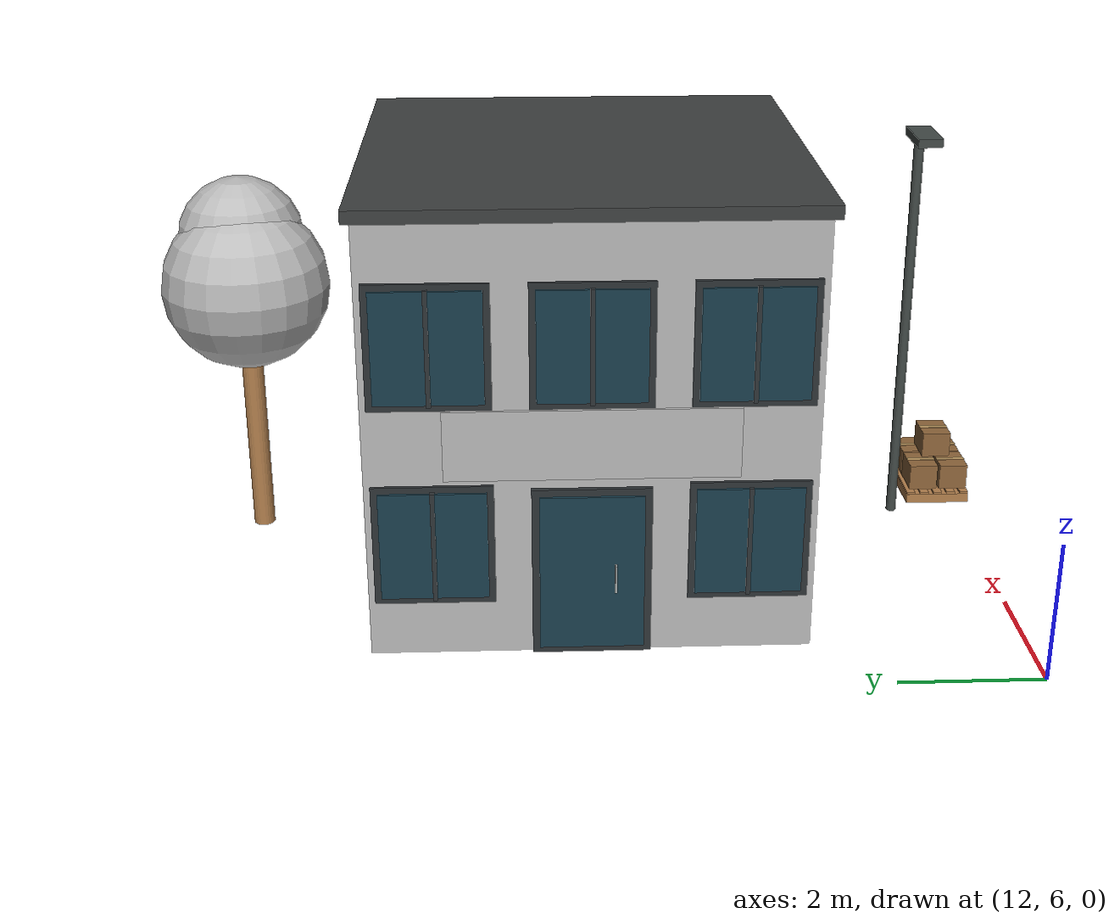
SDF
<sdf version="1.5">
 <world name="default">
  <include><uri>model://sun</uri></include>
  <model name="park_office">
   <static>true</static>
   <pose>16 12 0.003 0 0 0</pose>
   <link name="structure">
    <visual name="office_shell">
     <pose>0 0 3.05 0 0 0</pose>
     <geometry><box><size>6 6 6.1</size></box></geometry>
     <material>
      <script>
       <uri>file:///home/fxxk/px4_agent/scene/materials/scripts</uri>
       <uri>file:///home/fxxk/px4_agent/scene/materials/textures</uri>
       <name>Yard/concrete</name>
      </script>
     </material>
    </visual>
    <collision name="office_shell_collision">
     <pose>0 0 3.05 0 0 0</pose>
     <geometry><box><size>6 6 6.1</size></box></geometry>
     <surface><friction><ode><mu>1.0</mu><mu2>1.0</mu2></ode></friction></surface>
    </collision>
    <visual name="office_roof">
     <pose>0 0 6.19 0 0 0</pose>
     <geometry><box><size>6.2 6.2 0.18</size></box></geometry>
     <material>
      <ambient>0.24 0.25 0.25 1</ambient>
      <diffuse>0.24 0.25 0.25 1</diffuse>
      <specular>0.04 0.04 0.04 1</specular>
     </material>
    </visual>
    <collision name="office_roof_collision">
     <pose>0 0 6.19 0 0 0</pose>
     <geometry><box><size>6.2 6.2 0.18</size></box></geometry>
     <surface><friction><ode><mu>1.0</mu><mu2>1.0</mu2></ode></friction></surface>
    </collision>
    <visual name="front_frame_0_0">
     <pose>-3.025 -2.1 1.65 0 0 0</pose>
     <geometry><box><size>0.045 1.62 1.72</size></box></geometry>
     <material>
      <ambient>0.18 0.2 0.21 1</ambient>
      <diffuse>0.18 0.2 0.21 1</diffuse>
      <specular>0.04 0.04 0.04 1</specular>
     </material>
    </visual>
    <visual name="front_glass_0_0">
     <pose>-3.056 -2.1 1.65 0 0 0</pose>
     <geometry><box><size>0.05 1.44 1.54</size></box></geometry>
     <material>
      <ambient>0.1 0.24 0.3 1</ambient>
      <diffuse>0.1 0.24 0.3 1</diffuse>
      <specular>0.04 0.04 0.04 1</specular>
     </material>
    </visual>
    <visual name="window_mullion_0_0">
     <pose>-3.086 -2.1 1.65 0 0 0</pose>
     <geometry><box><size>0.055 0.06 1.58</size></box></geometry>
     <material>
      <ambient>0.18 0.2 0.21 1</ambient>
      <diffuse>0.18 0.2 0.21 1</diffuse>
      <specular>0.04 0.04 0.04 1</specular>
     </material>
    </visual>
    <visual name="front_frame_0_2">
     <pose>-3.025 2.1 1.65 0 0 0</pose>
     <geometry><box><size>0.045 1.62 1.72</size></box></geometry>
     <material>
      <ambient>0.18 0.2 0.21 1</ambient>
      <diffuse>0.18 0.2 0.21 1</diffuse>
      <specular>0.04 0.04 0.04 1</specular>
     </material>
    </visual>
    <visual name="front_glass_0_2">
     <pose>-3.056 2.1 1.65 0 0 0</pose>
     <geometry><box><size>0.05 1.44 1.54</size></box></geometry>
     <material>
      <ambient>0.1 0.24 0.3 1</ambient>
      <diffuse>0.1 0.24 0.3 1</diffuse>
      <specular>0.04 0.04 0.04 1</specular>
     </material>
    </visual>
    <visual name="window_mullion_0_2">
     <pose>-3.086 2.1 1.65 0 0 0</pose>
     <geometry><box><size>0.055 0.06 1.58</size></box></geometry>
     <material>
      <ambient>0.18 0.2 0.21 1</ambient>
      <diffuse>0.18 0.2 0.21 1</diffuse>
      <specular>0.04 0.04 0.04 1</specular>
     </material>
    </visual>
    <visual name="front_frame_1_0">
     <pose>-3.025 -2.1 4.45 0 0 0</pose>
     <geometry><box><size>0.045 1.62 1.72</size></box></geometry>
     <material>
      <ambient>0.18 0.2 0.21 1</ambient>
      <diffuse>0.18 0.2 0.21 1</diffuse>
      <specular>0.04 0.04 0.04 1</specular>
     </material>
    </visual>
    <visual name="front_glass_1_0">
     <pose>-3.056 -2.1 4.45 0 0 0</pose>
     <geometry><box><size>0.05 1.44 1.54</size></box></geometry>
     <material>
      <ambient>0.1 0.24 0.3 1</ambient>
      <diffuse>0.1 0.24 0.3 1</diffuse>
      <specular>0.04 0.04 0.04 1</specular>
     </material>
    </visual>
    <visual name="window_mullion_1_0">
     <pose>-3.086 -2.1 4.45 0 0 0</pose>
     <geometry><box><size>0.055 0.06 1.58</size></box></geometry>
     <material>
      <ambient>0.18 0.2 0.21 1</ambient>
      <diffuse>0.18 0.2 0.21 1</diffuse>
      <specular>0.04 0.04 0.04 1</specular>
     </material>
    </visual>
    <visual name="front_frame_1_1">
     <pose>-3.025 0 4.45 0 0 0</pose>
     <geometry><box><size>0.045 1.62 1.72</size></box></geometry>
     <material>
      <ambient>0.18 0.2 0.21 1</ambient>
      <diffuse>0.18 0.2 0.21 1</diffuse>
      <specular>0.04 0.04 0.04 1</specular>
     </material>
    </visual>
    <visual name="front_glass_1_1">
     <pose>-3.056 0 4.45 0 0 0</pose>
     <geometry><box><size>0.05 1.44 1.54</size></box></geometry>
     <material>
      <ambient>0.1 0.24 0.3 1</ambient>
      <diffuse>0.1 0.24 0.3 1</diffuse>
      <specular>0.04 0.04 0.04 1</specular>
     </material>
    </visual>
    <visual name="window_mullion_1_1">
     <pose>-3.086 0 4.45 0 0 0</pose>
     <geometry><box><size>0.055 0.06 1.58</size></box></geometry>
     <material>
      <ambient>0.18 0.2 0.21 1</ambient>
      <diffuse>0.18 0.2 0.21 1</diffuse>
      <specular>0.04 0.04 0.04 1</specular>
     </material>
    </visual>
    <visual name="front_frame_1_2">
     <pose>-3.025 2.1 4.45 0 0 0</pose>
     <geometry><box><size>0.045 1.62 1.72</size></box></geometry>
     <material>
      <ambient>0.18 0.2 0.21 1</ambient>
      <diffuse>0.18 0.2 0.21 1</diffuse>
      <specular>0.04 0.04 0.04 1</specular>
     </material>
    </visual>
    <visual name="front_glass_1_2">
     <pose>-3.056 2.1 4.45 0 0 0</pose>
     <geometry><box><size>0.05 1.44 1.54</size></box></geometry>
     <material>
      <ambient>0.1 0.24 0.3 1</ambient>
      <diffuse>0.1 0.24 0.3 1</diffuse>
      <specular>0.04 0.04 0.04 1</specular>
     </material>
    </visual>
    <visual name="window_mullion_1_2">
     <pose>-3.086 2.1 4.45 0 0 0</pose>
     <geometry><box><size>0.055 0.06 1.58</size></box></geometry>
     <material>
      <ambient>0.18 0.2 0.21 1</ambient>
      <diffuse>0.18 0.2 0.21 1</diffuse>
      <specular>0.04 0.04 0.04 1</specular>
     </material>
    </visual>
    <visual name="entrance_frame">
     <pose>-3.036 0 1.225 0 0 0</pose>
     <geometry><box><size>0.06 1.6 2.45</size></box></geometry>
     <material>
      <ambient>0.18 0.2 0.21 1</ambient>
      <diffuse>0.18 0.2 0.21 1</diffuse>
      <specular>0.04 0.04 0.04 1</specular>
     </material>
    </visual>
    <visual name="glass_entrance">
     <pose>-3.076 0 1.225 0 0 0</pose>
     <geometry><box><size>0.065 1.4 2.25</size></box></geometry>
     <material>
      <ambient>0.1 0.24 0.3 1</ambient>
      <diffuse>0.1 0.24 0.3 1</diffuse>
      <specular>0.04 0.04 0.04 1</specular>
     </material>
    </visual>
    <visual name="door_handle">
     <pose>-3.13 -0.32 1.15 0 0 0</pose>
     <geometry><box><size>0.07 0.028 0.4</size></box></geometry>
     <material>
      <ambient>0.63 0.65 0.65 1</ambient>
      <diffuse>0.63 0.65 0.65 1</diffuse>
      <specular>0.04 0.04 0.04 1</specular>
     </material>
    </visual>
    <visual name="office_name">
     <pose>-3.07 0 3.1 0 0 0</pose>
     <geometry><box><size>0.04 3.9 0.98</size></box></geometry>
     <material>
      <script>
       <uri>file:///home/fxxk/px4_agent/scene/materials/scripts</uri>
       <uri>file:///home/fxxk/px4_agent/scene/materials/textures</uri>
       <name>Yard/office_sign</name>
      </script>
     </material>
    </visual>
    <visual name="side_window_-1_0">
     <pose>-1.8 -3.029 4.4 0 0 0</pose>
     <geometry><box><size>1.35 0.045 1.6</size></box></geometry>
     <material>
      <ambient>0.1 0.24 0.3 1</ambient>
      <diffuse>0.1 0.24 0.3 1</diffuse>
      <specular>0.04 0.04 0.04 1</specular>
     </material>
    </visual>
    <visual name="side_window_-1_1">
     <pose>0.4 -3.029 4.4 0 0 0</pose>
     <geometry><box><size>1.35 0.045 1.6</size></box></geometry>
     <material>
      <ambient>0.1 0.24 0.3 1</ambient>
      <diffuse>0.1 0.24 0.3 1</diffuse>
      <specular>0.04 0.04 0.04 1</specular>
     </material>
    </visual>
    <visual name="side_window_-1_2">
     <pose>2.1 -3.029 4.4 0 0 0</pose>
     <geometry><box><size>1.35 0.045 1.6</size></box></geometry>
     <material>
      <ambient>0.1 0.24 0.3 1</ambient>
      <diffuse>0.1 0.24 0.3 1</diffuse>
      <specular>0.04 0.04 0.04 1</specular>
     </material>
    </visual>
    <visual name="side_window_1_0">
     <pose>-1.8 3.029 4.4 0 0 0</pose>
     <geometry><box><size>1.35 0.045 1.6</size></box></geometry>
     <material>
      <ambient>0.1 0.24 0.3 1</ambient>
      <diffuse>0.1 0.24 0.3 1</diffuse>
      <specular>0.04 0.04 0.04 1</specular>
     </material>
    </visual>
    <visual name="side_window_1_1">
     <pose>0.4 3.029 4.4 0 0 0</pose>
     <geometry><box><size>1.35 0.045 1.6</size></box></geometry>
     <material>
      <ambient>0.1 0.24 0.3 1</ambient>
      <diffuse>0.1 0.24 0.3 1</diffuse>
      <specular>0.04 0.04 0.04 1</specular>
     </material>
    </visual>
    <visual name="side_window_1_2">
     <pose>2.1 3.029 4.4 0 0 0</pose>
     <geometry><box><size>1.35 0.045 1.6</size></box></geometry>
     <material>
      <ambient>0.1 0.24 0.3 1</ambient>
      <diffuse>0.1 0.24 0.3 1</diffuse>
      <specular>0.04 0.04 0.04 1</specular>
     </material>
    </visual>
   </link>
  </model>
  <model name="cartons_pallet_2">
   <static>true</static>
   <pose>17.8 6.2 0.003 0 0 0</pose>
   <link name="structure">
    <visual name="pallet_collision_base">
     <pose>0 0 0.075 0 0 0</pose>
     <geometry><box><size>1.2 1 0.15</size></box></geometry>
     <material>
      <script>
       <uri>file:///home/fxxk/px4_agent/scene/materials/scripts</uri>
       <uri>file:///home/fxxk/px4_agent/scene/materials/textures</uri>
       <name>Yard/wood</name>
      </script>
     </material>
    </visual>
    <collision name="pallet_collision_base_collision">
     <pose>0 0 0.075 0 0 0</pose>
     <geometry><box><size>1.2 1 0.15</size></box></geometry>
     <surface><friction><ode><mu>1.0</mu><mu2>1.0</mu2></ode></friction></surface>
    </collision>
    <visual name="pallet_slat_0">
     <pose>0 -0.43 0.168 0 0 0</pose>
     <geometry><box><size>1.2 0.13 0.035</size></box></geometry>
     <material>
      <script>
       <uri>file:///home/fxxk/px4_agent/scene/materials/scripts</uri>
       <uri>file:///home/fxxk/px4_agent/scene/materials/textures</uri>
       <name>Yard/wood</name>
      </script>
     </material>
    </visual>
    <visual name="pallet_slat_1">
     <pose>0 -0.215 0.168 0 0 0</pose>
     <geometry><box><size>1.2 0.13 0.035</size></box></geometry>
     <material>
      <script>
       <uri>file:///home/fxxk/px4_agent/scene/materials/scripts</uri>
       <uri>file:///home/fxxk/px4_agent/scene/materials/textures</uri>
       <name>Yard/wood</name>
      </script>
     </material>
    </visual>
    <visual name="pallet_slat_2">
     <pose>0 0 0.168 0 0 0</pose>
     <geometry><box><size>1.2 0.13 0.035</size></box></geometry>
     <material>
      <script>
       <uri>file:///home/fxxk/px4_agent/scene/materials/scripts</uri>
       <uri>file:///home/fxxk/px4_agent/scene/materials/textures</uri>
       <name>Yard/wood</name>
      </script>
     </material>
    </visual>
    <visual name="pallet_slat_3">
     <pose>0 0.215 0.168 0 0 0</pose>
     <geometry><box><size>1.2 0.13 0.035</size></box></geometry>
     <material>
      <script>
       <uri>file:///home/fxxk/px4_agent/scene/materials/scripts</uri>
       <uri>file:///home/fxxk/px4_agent/scene/materials/textures</uri>
       <name>Yard/wood</name>
      </script>
     </material>
    </visual>
    <visual name="pallet_slat_4">
     <pose>0 0.43 0.168 0 0 0</pose>
     <geometry><box><size>1.2 0.13 0.035</size></box></geometry>
     <material>
      <script>
       <uri>file:///home/fxxk/px4_agent/scene/materials/scripts</uri>
       <uri>file:///home/fxxk/px4_agent/scene/materials/textures</uri>
       <name>Yard/wood</name>
      </script>
     </material>
    </visual>
    <visual name="carton_0">
     <pose>-0.29 -0.24 0.43 0 0 0</pose>
     <geometry><box><size>0.54 0.44 0.4</size></box></geometry>
     <material>
      <ambient>0.56 0.4 0.23 1</ambient>
      <diffuse>0.56 0.4 0.23 1</diffuse>
      <specular>0.04 0.04 0.04 1</specular>
     </material>
    </visual>
    <collision name="carton_0_collision">
     <pose>-0.29 -0.24 0.43 0 0 0</pose>
     <geometry><box><size>0.54 0.44 0.4</size></box></geometry>
     <surface><friction><ode><mu>1.0</mu><mu2>1.0</mu2></ode></friction></surface>
    </collision>
    <visual name="packing_tape_0">
     <pose>-0.29 -0.24 0.635 0 0 0</pose>
     <geometry><box><size>0.075 0.442 0.008</size></box></geometry>
     <material>
      <ambient>0.72 0.58 0.36 1</ambient>
      <diffuse>0.72 0.58 0.36 1</diffuse>
      <specular>0.04 0.04 0.04 1</specular>
     </material>
    </visual>
    <visual name="carton_1">
     <pose>0.29 -0.24 0.43 0 0 0</pose>
     <geometry><box><size>0.54 0.44 0.4</size></box></geometry>
     <material>
      <ambient>0.56 0.4 0.23 1</ambient>
      <diffuse>0.56 0.4 0.23 1</diffuse>
      <specular>0.04 0.04 0.04 1</specular>
     </material>
    </visual>
    <collision name="carton_1_collision">
     <pose>0.29 -0.24 0.43 0 0 0</pose>
     <geometry><box><size>0.54 0.44 0.4</size></box></geometry>
     <surface><friction><ode><mu>1.0</mu><mu2>1.0</mu2></ode></friction></surface>
    </collision>
    <visual name="packing_tape_1">
     <pose>0.29 -0.24 0.635 0 0 0</pose>
     <geometry><box><size>0.075 0.442 0.008</size></box></geometry>
     <material>
      <ambient>0.72 0.58 0.36 1</ambient>
      <diffuse>0.72 0.58 0.36 1</diffuse>
      <specular>0.04 0.04 0.04 1</specular>
     </material>
    </visual>
    <visual name="carton_2">
     <pose>-0.29 0.24 0.43 0 0 0</pose>
     <geometry><box><size>0.54 0.44 0.4</size></box></geometry>
     <material>
      <ambient>0.56 0.4 0.23 1</ambient>
      <diffuse>0.56 0.4 0.23 1</diffuse>
      <specular>0.04 0.04 0.04 1</specular>
     </material>
    </visual>
    <collision name="carton_2_collision">
     <pose>-0.29 0.24 0.43 0 0 0</pose>
     <geometry><box><size>0.54 0.44 0.4</size></box></geometry>
     <surface><friction><ode><mu>1.0</mu><mu2>1.0</mu2></ode></friction></surface>
    </collision>
    <visual name="packing_tape_2">
     <pose>-0.29 0.24 0.635 0 0 0</pose>
     <geometry><box><size>0.075 0.442 0.008</size></box></geometry>
     <material>
      <ambient>0.72 0.58 0.36 1</ambient>
      <diffuse>0.72 0.58 0.36 1</diffuse>
      <specular>0.04 0.04 0.04 1</specular>
     </material>
    </visual>
    <visual name="carton_3">
     <pose>0.29 0.24 0.43 0 0 0</pose>
     <geometry><box><size>0.54 0.44 0.4</size></box></geometry>
     <material>
      <ambient>0.56 0.4 0.23 1</ambient>
      <diffuse>0.56 0.4 0.23 1</diffuse>
      <specular>0.04 0.04 0.04 1</specular>
     </material>
    </visual>
    <collision name="carton_3_collision">
     <pose>0.29 0.24 0.43 0 0 0</pose>
     <geometry><box><size>0.54 0.44 0.4</size></box></geometry>
     <surface><friction><ode><mu>1.0</mu><mu2>1.0</mu2></ode></friction></surface>
    </collision>
    <visual name="packing_tape_3">
     <pose>0.29 0.24 0.635 0 0 0</pose>
     <geometry><box><size>0.075 0.442 0.008</size></box></geometry>
     <material>
      <ambient>0.72 0.58 0.36 1</ambient>
      <diffuse>0.72 0.58 0.36 1</diffuse>
      <specular>0.04 0.04 0.04 1</specular>
     </material>
    </visual>
    <visual name="carton_4">
     <pose>0 0 0.87 0 0 0</pose>
     <geometry><box><size>0.54 0.44 0.4</size></box></geometry>
     <material>
      <ambient>0.56 0.4 0.23 1</ambient>
      <diffuse>0.56 0.4 0.23 1</diffuse>
      <specular>0.04 0.04 0.04 1</specular>
     </material>
    </visual>
    <collision name="carton_4_collision">
     <pose>0 0 0.87 0 0 0</pose>
     <geometry><box><size>0.54 0.44 0.4</size></box></geometry>
     <surface><friction><ode><mu>1.0</mu><mu2>1.0</mu2></ode></friction></surface>
    </collision>
    <visual name="packing_tape_4">
     <pose>0 0 1.075 0 0 0</pose>
     <geometry><box><size>0.075 0.442 0.008</size></box></geometry>
     <material>
      <ambient>0.72 0.58 0.36 1</ambient>
      <diffuse>0.72 0.58 0.36 1</diffuse>
      <specular>0.04 0.04 0.04 1</specular>
     </material>
    </visual>
   </link>
  </model>
  <model name="yard_tree_6">
   <static>true</static>
   <pose>17 17 0.003 0 0 0</pose>
   <link name="structure">
    <visual name="trunk">
     <pose>0 0 1.6 0 0 0</pose>
     <geometry><cylinder><radius>0.16</radius><length>3.2</length></cylinder></geometry>
     <material>
      <script>
       <uri>file:///home/fxxk/px4_agent/scene/materials/scripts</uri>
       <uri>file:///home/fxxk/px4_agent/scene/materials/textures</uri>
       <name>Yard/wood</name>
      </script>
     </material>
    </visual>
    <collision name="trunk_collision">
     <pose>0 0 1.6 0 0 0</pose>
     <geometry><cylinder><radius>0.16</radius><length>3.2</length></cylinder></geometry>
     <surface><friction><ode><mu>1.0</mu><mu2>1.0</mu2></ode></friction></surface>
    </collision>
    <visual name="crown">
     <pose>0 0 3.95 0 0 0</pose>
     <geometry><sphere><radius>1.25</radius></sphere></geometry>
     <material>
      <script>
       <uri>file:///home/fxxk/px4_agent/scene/materials/scripts</uri>
       <uri>file:///home/fxxk/px4_agent/scene/materials/textures</uri>
       <name>Yard/foliage</name>
      </script>
     </material>
    </visual>
    <collision name="crown_collision">
     <pose>0 0 3.95 0 0 0</pose>
     <geometry><sphere><radius>1.25</radius></sphere></geometry>
     <surface><friction><ode><mu>1.0</mu><mu2>1.0</mu2></ode></friction></surface>
    </collision>
    <visual name="crown_top">
     <pose>0.25 0.06 4.6 0 0 0</pose>
     <geometry><sphere><radius>0.9375</radius></sphere></geometry>
     <material>
      <script>
       <uri>file:///home/fxxk/px4_agent/scene/materials/scripts</uri>
       <uri>file:///home/fxxk/px4_agent/scene/materials/textures</uri>
       <name>Yard/foliage</name>
      </script>
     </material>
    </visual>
   </link>
  </model>
  <model name="street_lamp_north">
   <static>true</static>
   <pose>17 7 0.003 0 0 0</pose>
   <link name="structure">
    <visual name="lamp_pole">
     <pose>0 0 3.075 0 0 0</pose>
     <geometry><cylinder><radius>0.075</radius><length>6.15</length></cylinder></geometry>
     <material>
      <ambient>0.26 0.29 0.28 1</ambient>
      <diffuse>0.26 0.29 0.28 1</diffuse>
      <specular>0.04 0.04 0.04 1</specular>
     </material>
    </visual>
    <collision name="lamp_pole_collision">
     <pose>0 0 3.075 0 0 0</pose>
     <geometry><cylinder><radius>0.075</radius><length>6.15</length></cylinder></geometry>
     <surface><friction><ode><mu>1.0</mu><mu2>1.0</mu2></ode></friction></surface>
    </collision>
    <visual name="lamp_head">
     <pose>-0.26 0 6.17 0 0 0</pose>
     <geometry><box><size>0.82 0.36 0.13</size></box></geometry>
     <material>
      <ambient>0.26 0.29 0.28 1</ambient>
      <diffuse>0.26 0.29 0.28 1</diffuse>
      <specular>0.04 0.04 0.04 1</specular>
     </material>
    </visual>
    <visual name="lamp_glass">
     <pose>-0.26 0 6.098 0 0 0</pose>
     <geometry><box><size>0.67 0.28 0.015</size></box></geometry>
     <cast_shadows>false</cast_shadows>
     <material>
      <ambient>0.82 0.82 0.66 1</ambient>
      <diffuse>0.82 0.82 0.66 1</diffuse>
      <specular>0.04 0.04 0.04 1</specular>
     </material>
    </visual>
   </link>
  </model>
 </world>
</sdf>
